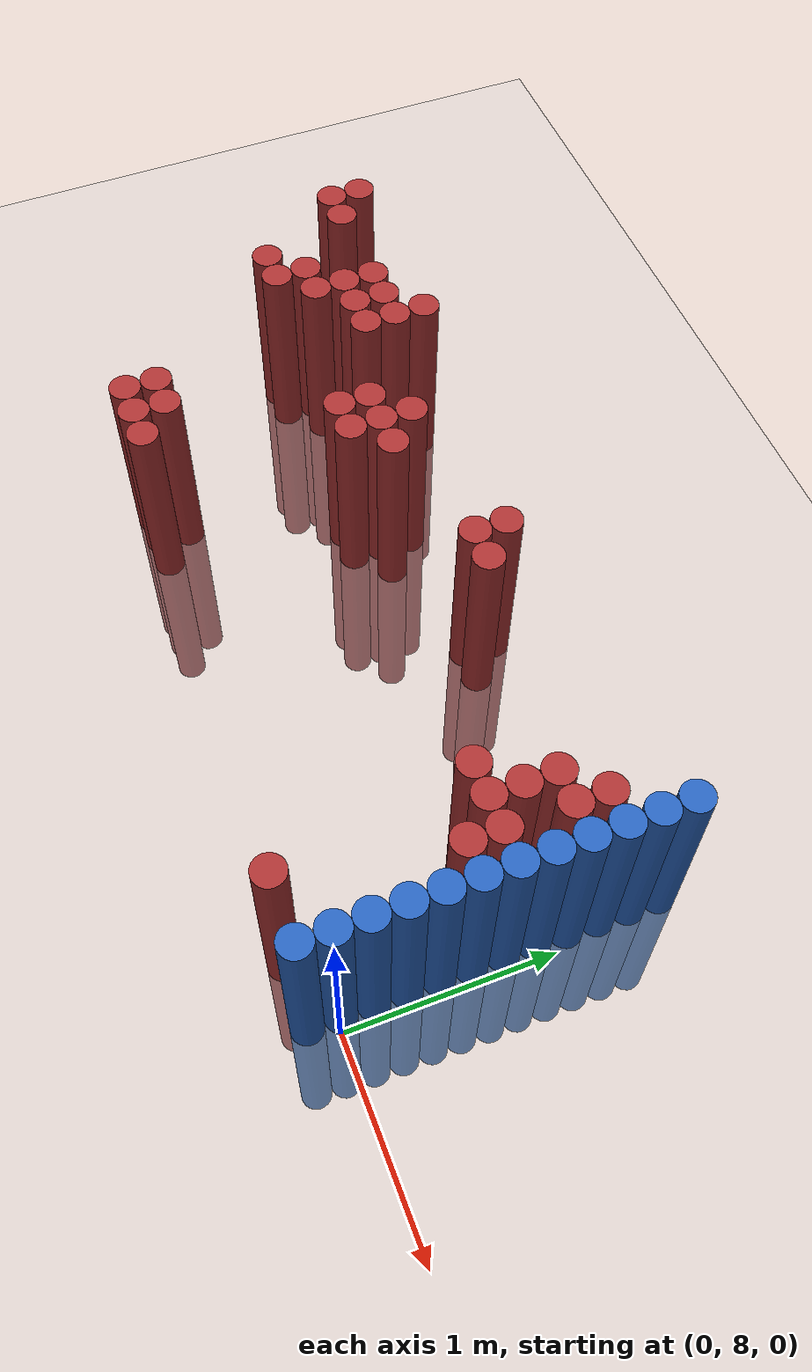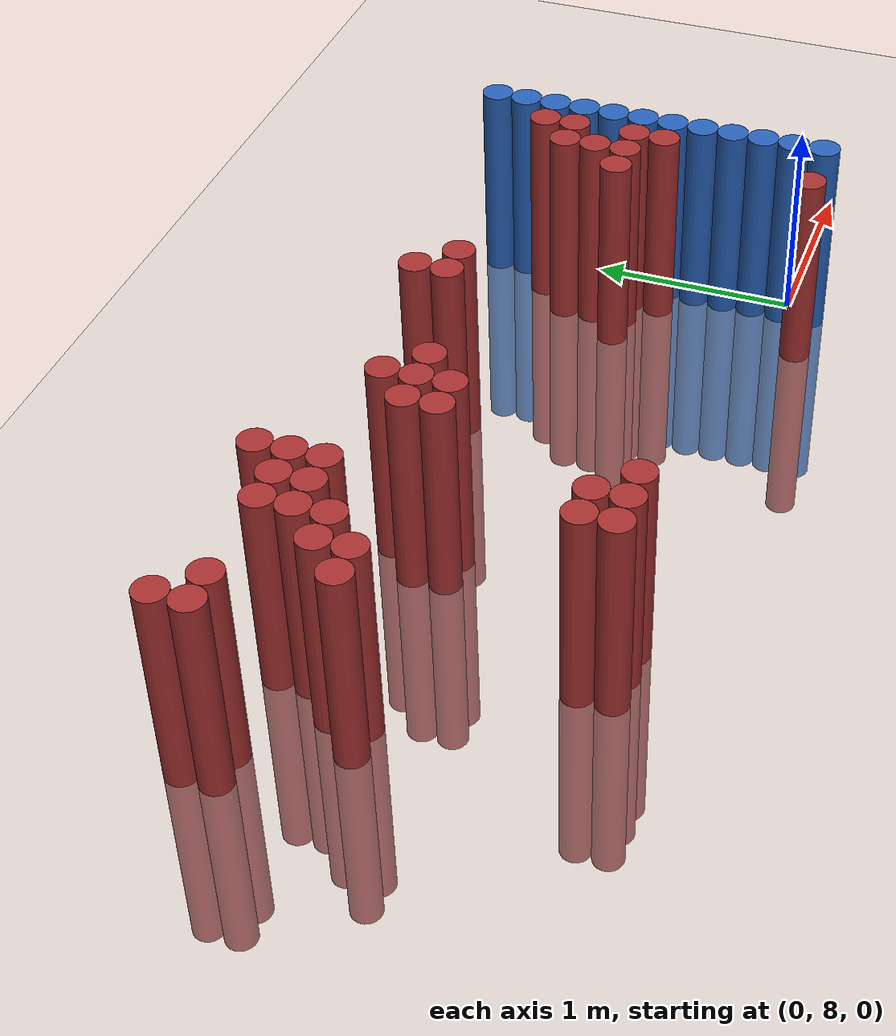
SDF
<sdf version="1.6">
 <world name="default">
  <model name="ground_plane">
   <static>1</static>
   <link name="link">
    <collision name="collision">
     <geometry><plane><normal>0 0 1</normal><size>100 100</size></plane></geometry>
     <surface><friction><ode><mu>100</mu><mu2>50</mu2></ode></friction></surface>
    </collision>
    <visual name="visual">
     <cast_shadows>0</cast_shadows>
     <geometry><plane><normal>0 0 1</normal><size>100 100</size></plane></geometry>
     <material>
      <script><uri>file://media/materials/scripts/gazebo.material</uri><name>Gazebo/Grey</name></script>
     </material>
    </visual>
   </link>
  </model>
  <model name="unit_cylinder_147">
   <static>1</static>
   <pose>-3.825000 9.375000 0.000000 0.000000 0.000000 0.000000</pose>
   <link name="link">
    <inertial>
     <mass>1</mass>
     <inertia><ixx>0.145833</ixx><ixy>0</ixy><ixz>0</ixz><iyy>0.145833</iyy><iyz>0</iyz><izz>0.125</izz></inertia>
    </inertial>
    <collision name="collision">
     <geometry><cylinder><radius>0.075000</radius><length>2</length></cylinder></geometry>
    </collision>
    <visual name="visual">
     <geometry><cylinder><radius>0.075000</radius><length>2</length></cylinder></geometry>
     <material>
      <ambient>0.648000 0.192000 0.192000 1</ambient>
      <diffuse>0.648000 0.192000 0.192000 1</diffuse>
     </material>
     <material>
      <script><name>Gazebo/Grey</name><uri>file://media/materials/scripts/gazebo.material</uri></script>
     </material>
    </visual>
   </link>
  </model>
  <model name="unit_cylinder_148">
   <static>1</static>
   <pose>-3.825000 9.525000 0.000000 0.000000 0.000000 0.000000</pose>
   <link name="link">
    <inertial>
     <mass>1</mass>
     <inertia><ixx>0.145833</ixx><ixy>0</ixy><ixz>0</ixz><iyy>0.145833</iyy><iyz>0</iyz><izz>0.125</izz></inertia>
    </inertial>
    <collision name="collision">
     <geometry><cylinder><radius>0.075000</radius><length>2</length></cylinder></geometry>
    </collision>
    <visual name="visual">
     <geometry><cylinder><radius>0.075000</radius><length>2</length></cylinder></geometry>
     <material>
      <ambient>0.648000 0.192000 0.192000 1</ambient>
      <diffuse>0.648000 0.192000 0.192000 1</diffuse>
     </material>
     <material>
      <script><name>Gazebo/Grey</name><uri>file://media/materials/scripts/gazebo.material</uri></script>
     </material>
    </visual>
   </link>
  </model>
  <model name="unit_cylinder_152">
   <static>1</static>
   <pose>-3.675000 9.375000 0.000000 0.000000 0.000000 0.000000</pose>
   <link name="link">
    <inertial>
     <mass>1</mass>
     <inertia><ixx>0.145833</ixx><ixy>0</ixy><ixz>0</ixz><iyy>0.145833</iyy><iyz>0</iyz><izz>0.125</izz></inertia>
    </inertial>
    <collision name="collision">
     <geometry><cylinder><radius>0.075000</radius><length>2</length></cylinder></geometry>
    </collision>
    <visual name="visual">
     <geometry><cylinder><radius>0.075000</radius><length>2</length></cylinder></geometry>
     <material>
      <ambient>0.648000 0.192000 0.192000 1</ambient>
      <diffuse>0.648000 0.192000 0.192000 1</diffuse>
     </material>
     <material>
      <script><name>Gazebo/Grey</name><uri>file://media/materials/scripts/gazebo.material</uri></script>
     </material>
    </visual>
   </link>
  </model>
  <model name="unit_cylinder_155">
   <static>1</static>
   <pose>-3.525000 8.925000 0.000000 0.000000 0.000000 0.000000</pose>
   <link name="link">
    <inertial>
     <mass>1</mass>
     <inertia><ixx>0.145833</ixx><ixy>0</ixy><ixz>0</ixz><iyy>0.145833</iyy><iyz>0</iyz><izz>0.125</izz></inertia>
    </inertial>
    <collision name="collision">
     <geometry><cylinder><radius>0.075000</radius><length>2</length></cylinder></geometry>
    </collision>
    <visual name="visual">
     <geometry><cylinder><radius>0.075000</radius><length>2</length></cylinder></geometry>
     <material>
      <ambient>0.648000 0.192000 0.192000 1</ambient>
      <diffuse>0.648000 0.192000 0.192000 1</diffuse>
     </material>
     <material>
      <script><name>Gazebo/Grey</name><uri>file://media/materials/scripts/gazebo.material</uri></script>
     </material>
    </visual>
   </link>
  </model>
  <model name="unit_cylinder_159">
   <static>1</static>
   <pose>-3.375000 8.925000 0.000000 0.000000 0.000000 0.000000</pose>
   <link name="link">
    <inertial>
     <mass>1</mass>
     <inertia><ixx>0.145833</ixx><ixy>0</ixy><ixz>0</ixz><iyy>0.145833</iyy><iyz>0</iyz><izz>0.125</izz></inertia>
    </inertial>
    <collision name="collision">
     <geometry><cylinder><radius>0.075000</radius><length>2</length></cylinder></geometry>
    </collision>
    <visual name="visual">
     <geometry><cylinder><radius>0.075000</radius><length>2</length></cylinder></geometry>
     <material>
      <ambient>0.648000 0.192000 0.192000 1</ambient>
      <diffuse>0.648000 0.192000 0.192000 1</diffuse>
     </material>
     <material>
      <script><name>Gazebo/Grey</name><uri>file://media/materials/scripts/gazebo.material</uri></script>
     </material>
    </visual>
   </link>
  </model>
  <model name="unit_cylinder_160">
   <static>1</static>
   <pose>-3.375000 9.075000 0.000000 0.000000 0.000000 0.000000</pose>
   <link name="link">
    <inertial>
     <mass>1</mass>
     <inertia><ixx>0.145833</ixx><ixy>0</ixy><ixz>0</ixz><iyy>0.145833</iyy><iyz>0</iyz><izz>0.125</izz></inertia>
    </inertial>
    <collision name="collision">
     <geometry><cylinder><radius>0.075000</radius><length>2</length></cylinder></geometry>
    </collision>
    <visual name="visual">
     <geometry><cylinder><radius>0.075000</radius><length>2</length></cylinder></geometry>
     <material>
      <ambient>0.648000 0.192000 0.192000 1</ambient>
      <diffuse>0.648000 0.192000 0.192000 1</diffuse>
     </material>
     <material>
      <script><name>Gazebo/Grey</name><uri>file://media/materials/scripts/gazebo.material</uri></script>
     </material>
    </visual>
   </link>
  </model>
  <model name="unit_cylinder_166">
   <static>1</static>
   <pose>-3.225000 9.075000 0.000000 0.000000 0.000000 0.000000</pose>
   <link name="link">
    <inertial>
     <mass>1</mass>
     <inertia><ixx>0.145833</ixx><ixy>0</ixy><ixz>0</ixz><iyy>0.145833</iyy><iyz>0</iyz><izz>0.125</izz></inertia>
    </inertial>
    <collision name="collision">
     <geometry><cylinder><radius>0.075000</radius><length>2</length></cylinder></geometry>
    </collision>
    <visual name="visual">
     <geometry><cylinder><radius>0.075000</radius><length>2</length></cylinder></geometry>
     <material>
      <ambient>0.648000 0.192000 0.192000 1</ambient>
      <diffuse>0.648000 0.192000 0.192000 1</diffuse>
     </material>
     <material>
      <script><name>Gazebo/Grey</name><uri>file://media/materials/scripts/gazebo.material</uri></script>
     </material>
    </visual>
   </link>
  </model>
  <model name="unit_cylinder_167">
   <static>1</static>
   <pose>-3.225000 9.225000 0.000000 0.000000 0.000000 0.000000</pose>
   <link name="link">
    <inertial>
     <mass>1</mass>
     <inertia><ixx>0.145833</ixx><ixy>0</ixy><ixz>0</ixz><iyy>0.145833</iyy><iyz>0</iyz><izz>0.125</izz></inertia>
    </inertial>
    <collision name="collision">
     <geometry><cylinder><radius>0.075000</radius><length>2</length></cylinder></geometry>
    </collision>
    <visual name="visual">
     <geometry><cylinder><radius>0.075000</radius><length>2</length></cylinder></geometry>
     <material>
      <ambient>0.648000 0.192000 0.192000 1</ambient>
      <diffuse>0.648000 0.192000 0.192000 1</diffuse>
     </material>
     <material>
      <script><name>Gazebo/Grey</name><uri>file://media/materials/scripts/gazebo.material</uri></script>
     </material>
    </visual>
   </link>
  </model>
  <model name="unit_cylinder_168">
   <static>1</static>
   <pose>-3.225000 9.375000 0.000000 0.000000 0.000000 0.000000</pose>
   <link name="link">
    <inertial>
     <mass>1</mass>
     <inertia><ixx>0.145833</ixx><ixy>0</ixy><ixz>0</ixz><iyy>0.145833</iyy><iyz>0</iyz><izz>0.125</izz></inertia>
    </inertial>
    <collision name="collision">
     <geometry><cylinder><radius>0.075000</radius><length>2</length></cylinder></geometry>
    </collision>
    <visual name="visual">
     <geometry><cylinder><radius>0.075000</radius><length>2</length></cylinder></geometry>
     <material>
      <ambient>0.648000 0.192000 0.192000 1</ambient>
      <diffuse>0.648000 0.192000 0.192000 1</diffuse>
     </material>
     <material>
      <script><name>Gazebo/Grey</name><uri>file://media/materials/scripts/gazebo.material</uri></script>
     </material>
    </visual>
   </link>
  </model>
  <model name="unit_cylinder_172">
   <static>1</static>
   <pose>-3.075000 9.225000 0.000000 0.000000 0.000000 0.000000</pose>
   <link name="link">
    <inertial>
     <mass>1</mass>
     <inertia><ixx>0.145833</ixx><ixy>0</ixy><ixz>0</ixz><iyy>0.145833</iyy><iyz>0</iyz><izz>0.125</izz></inertia>
    </inertial>
    <collision name="collision">
     <geometry><cylinder><radius>0.075000</radius><length>2</length></cylinder></geometry>
    </collision>
    <visual name="visual">
     <geometry><cylinder><radius>0.075000</radius><length>2</length></cylinder></geometry>
     <material>
      <ambient>0.648000 0.192000 0.192000 1</ambient>
      <diffuse>0.648000 0.192000 0.192000 1</diffuse>
     </material>
     <material>
      <script><name>Gazebo/Grey</name><uri>file://media/materials/scripts/gazebo.material</uri></script>
     </material>
    </visual>
   </link>
  </model>
  <model name="unit_cylinder_173">
   <static>1</static>
   <pose>-3.075000 9.375000 0.000000 0.000000 0.000000 0.000000</pose>
   <link name="link">
    <inertial>
     <mass>1</mass>
     <inertia><ixx>0.145833</ixx><ixy>0</ixy><ixz>0</ixz><iyy>0.145833</iyy><iyz>0</iyz><izz>0.125</izz></inertia>
    </inertial>
    <collision name="collision">
     <geometry><cylinder><radius>0.075000</radius><length>2</length></cylinder></geometry>
    </collision>
    <visual name="visual">
     <geometry><cylinder><radius>0.075000</radius><length>2</length></cylinder></geometry>
     <material>
      <ambient>0.648000 0.192000 0.192000 1</ambient>
      <diffuse>0.648000 0.192000 0.192000 1</diffuse>
     </material>
     <material>
      <script><name>Gazebo/Grey</name><uri>file://media/materials/scripts/gazebo.material</uri></script>
     </material>
    </visual>
   </link>
  </model>
  <model name="unit_cylinder_176">
   <static>1</static>
   <pose>-2.925000 8.025000 0.000000 0.000000 0.000000 0.000000</pose>
   <link name="link">
    <inertial>
     <mass>1</mass>
     <inertia><ixx>0.145833</ixx><ixy>0</ixy><ixz>0</ixz><iyy>0.145833</iyy><iyz>0</iyz><izz>0.125</izz></inertia>
    </inertial>
    <collision name="collision">
     <geometry><cylinder><radius>0.075000</radius><length>2</length></cylinder></geometry>
    </collision>
    <visual name="visual">
     <geometry><cylinder><radius>0.075000</radius><length>2</length></cylinder></geometry>
     <material>
      <ambient>0.648000 0.192000 0.192000 1</ambient>
      <diffuse>0.648000 0.192000 0.192000 1</diffuse>
     </material>
     <material>
      <script><name>Gazebo/Grey</name><uri>file://media/materials/scripts/gazebo.material</uri></script>
     </material>
    </visual>
   </link>
  </model>
  <model name="unit_cylinder_177">
   <static>1</static>
   <pose>-2.925000 8.175000 0.000000 0.000000 0.000000 0.000000</pose>
   <link name="link">
    <inertial>
     <mass>1</mass>
     <inertia><ixx>0.145833</ixx><ixy>0</ixy><ixz>0</ixz><iyy>0.145833</iyy><iyz>0</iyz><izz>0.125</izz></inertia>
    </inertial>
    <collision name="collision">
     <geometry><cylinder><radius>0.075000</radius><length>2</length></cylinder></geometry>
    </collision>
    <visual name="visual">
     <geometry><cylinder><radius>0.075000</radius><length>2</length></cylinder></geometry>
     <material>
      <ambient>0.648000 0.192000 0.192000 1</ambient>
      <diffuse>0.648000 0.192000 0.192000 1</diffuse>
     </material>
     <material>
      <script><name>Gazebo/Grey</name><uri>file://media/materials/scripts/gazebo.material</uri></script>
     </material>
    </visual>
   </link>
  </model>
  <model name="unit_cylinder_178">
   <static>1</static>
   <pose>-2.925000 9.225000 0.000000 0.000000 0.000000 0.000000</pose>
   <link name="link">
    <inertial>
     <mass>1</mass>
     <inertia><ixx>0.145833</ixx><ixy>0</ixy><ixz>0</ixz><iyy>0.145833</iyy><iyz>0</iyz><izz>0.125</izz></inertia>
    </inertial>
    <collision name="collision">
     <geometry><cylinder><radius>0.075000</radius><length>2</length></cylinder></geometry>
    </collision>
    <visual name="visual">
     <geometry><cylinder><radius>0.075000</radius><length>2</length></cylinder></geometry>
     <material>
      <ambient>0.648000 0.192000 0.192000 1</ambient>
      <diffuse>0.648000 0.192000 0.192000 1</diffuse>
     </material>
     <material>
      <script><name>Gazebo/Grey</name><uri>file://media/materials/scripts/gazebo.material</uri></script>
     </material>
    </visual>
   </link>
  </model>
  <model name="unit_cylinder_179">
   <static>1</static>
   <pose>-2.925000 9.375000 0.000000 0.000000 0.000000 0.000000</pose>
   <link name="link">
    <inertial>
     <mass>1</mass>
     <inertia><ixx>0.145833</ixx><ixy>0</ixy><ixz>0</ixz><iyy>0.145833</iyy><iyz>0</iyz><izz>0.125</izz></inertia>
    </inertial>
    <collision name="collision">
     <geometry><cylinder><radius>0.075000</radius><length>2</length></cylinder></geometry>
    </collision>
    <visual name="visual">
     <geometry><cylinder><radius>0.075000</radius><length>2</length></cylinder></geometry>
     <material>
      <ambient>0.648000 0.192000 0.192000 1</ambient>
      <diffuse>0.648000 0.192000 0.192000 1</diffuse>
     </material>
     <material>
      <script><name>Gazebo/Grey</name><uri>file://media/materials/scripts/gazebo.material</uri></script>
     </material>
    </visual>
   </link>
  </model>
  <model name="unit_cylinder_180">
   <static>1</static>
   <pose>-2.925000 9.525000 0.000000 0.000000 0.000000 0.000000</pose>
   <link name="link">
    <inertial>
     <mass>1</mass>
     <inertia><ixx>0.145833</ixx><ixy>0</ixy><ixz>0</ixz><iyy>0.145833</iyy><iyz>0</iyz><izz>0.125</izz></inertia>
    </inertial>
    <collision name="collision">
     <geometry><cylinder><radius>0.075000</radius><length>2</length></cylinder></geometry>
    </collision>
    <visual name="visual">
     <geometry><cylinder><radius>0.075000</radius><length>2</length></cylinder></geometry>
     <material>
      <ambient>0.648000 0.192000 0.192000 1</ambient>
      <diffuse>0.648000 0.192000 0.192000 1</diffuse>
     </material>
     <material>
      <script><name>Gazebo/Grey</name><uri>file://media/materials/scripts/gazebo.material</uri></script>
     </material>
    </visual>
   </link>
  </model>
  <model name="unit_cylinder_183">
   <static>1</static>
   <pose>-2.775000 8.025000 0.000000 0.000000 0.000000 0.000000</pose>
   <link name="link">
    <inertial>
     <mass>1</mass>
     <inertia><ixx>0.145833</ixx><ixy>0</ixy><ixz>0</ixz><iyy>0.145833</iyy><iyz>0</iyz><izz>0.125</izz></inertia>
    </inertial>
    <collision name="collision">
     <geometry><cylinder><radius>0.075000</radius><length>2</length></cylinder></geometry>
    </collision>
    <visual name="visual">
     <geometry><cylinder><radius>0.075000</radius><length>2</length></cylinder></geometry>
     <material>
      <ambient>0.648000 0.192000 0.192000 1</ambient>
      <diffuse>0.648000 0.192000 0.192000 1</diffuse>
     </material>
     <material>
      <script><name>Gazebo/Grey</name><uri>file://media/materials/scripts/gazebo.material</uri></script>
     </material>
    </visual>
   </link>
  </model>
  <model name="unit_cylinder_184">
   <static>1</static>
   <pose>-2.775000 8.175000 0.000000 0.000000 0.000000 0.000000</pose>
   <link name="link">
    <inertial>
     <mass>1</mass>
     <inertia><ixx>0.145833</ixx><ixy>0</ixy><ixz>0</ixz><iyy>0.145833</iyy><iyz>0</iyz><izz>0.125</izz></inertia>
    </inertial>
    <collision name="collision">
     <geometry><cylinder><radius>0.075000</radius><length>2</length></cylinder></geometry>
    </collision>
    <visual name="visual">
     <geometry><cylinder><radius>0.075000</radius><length>2</length></cylinder></geometry>
     <material>
      <ambient>0.648000 0.192000 0.192000 1</ambient>
      <diffuse>0.648000 0.192000 0.192000 1</diffuse>
     </material>
     <material>
      <script><name>Gazebo/Grey</name><uri>file://media/materials/scripts/gazebo.material</uri></script>
     </material>
    </visual>
   </link>
  </model>
  <model name="unit_cylinder_187">
   <static>1</static>
   <pose>-2.625000 8.025000 0.000000 0.000000 0.000000 0.000000</pose>
   <link name="link">
    <inertial>
     <mass>1</mass>
     <inertia><ixx>0.145833</ixx><ixy>0</ixy><ixz>0</ixz><iyy>0.145833</iyy><iyz>0</iyz><izz>0.125</izz></inertia>
    </inertial>
    <collision name="collision">
     <geometry><cylinder><radius>0.075000</radius><length>2</length></cylinder></geometry>
    </collision>
    <visual name="visual">
     <geometry><cylinder><radius>0.075000</radius><length>2</length></cylinder></geometry>
     <material>
      <ambient>0.648000 0.192000 0.192000 1</ambient>
      <diffuse>0.648000 0.192000 0.192000 1</diffuse>
     </material>
     <material>
      <script><name>Gazebo/Grey</name><uri>file://media/materials/scripts/gazebo.material</uri></script>
     </material>
    </visual>
   </link>
  </model>
  <model name="unit_cylinder_188">
   <static>1</static>
   <pose>-2.475000 8.925000 0.000000 0.000000 0.000000 0.000000</pose>
   <link name="link">
    <inertial>
     <mass>1</mass>
     <inertia><ixx>0.145833</ixx><ixy>0</ixy><ixz>0</ixz><iyy>0.145833</iyy><iyz>0</iyz><izz>0.125</izz></inertia>
    </inertial>
    <collision name="collision">
     <geometry><cylinder><radius>0.075000</radius><length>2</length></cylinder></geometry>
    </collision>
    <visual name="visual">
     <geometry><cylinder><radius>0.075000</radius><length>2</length></cylinder></geometry>
     <material>
      <ambient>0.648000 0.192000 0.192000 1</ambient>
      <diffuse>0.648000 0.192000 0.192000 1</diffuse>
     </material>
     <material>
      <script><name>Gazebo/Grey</name><uri>file://media/materials/scripts/gazebo.material</uri></script>
     </material>
    </visual>
   </link>
  </model>
  <model name="unit_cylinder_189">
   <static>1</static>
   <pose>-2.475000 9.075000 0.000000 0.000000 0.000000 0.000000</pose>
   <link name="link">
    <inertial>
     <mass>1</mass>
     <inertia><ixx>0.145833</ixx><ixy>0</ixy><ixz>0</ixz><iyy>0.145833</iyy><iyz>0</iyz><izz>0.125</izz></inertia>
    </inertial>
    <collision name="collision">
     <geometry><cylinder><radius>0.075000</radius><length>2</length></cylinder></geometry>
    </collision>
    <visual name="visual">
     <geometry><cylinder><radius>0.075000</radius><length>2</length></cylinder></geometry>
     <material>
      <ambient>0.648000 0.192000 0.192000 1</ambient>
      <diffuse>0.648000 0.192000 0.192000 1</diffuse>
     </material>
     <material>
      <script><name>Gazebo/Grey</name><uri>file://media/materials/scripts/gazebo.material</uri></script>
     </material>
    </visual>
   </link>
  </model>
  <model name="unit_cylinder_190">
   <static>1</static>
   <pose>-2.325000 8.925000 0.000000 0.000000 0.000000 0.000000</pose>
   <link name="link">
    <inertial>
     <mass>1</mass>
     <inertia><ixx>0.145833</ixx><ixy>0</ixy><ixz>0</ixz><iyy>0.145833</iyy><iyz>0</iyz><izz>0.125</izz></inertia>
    </inertial>
    <collision name="collision">
     <geometry><cylinder><radius>0.075000</radius><length>2</length></cylinder></geometry>
    </collision>
    <visual name="visual">
     <geometry><cylinder><radius>0.075000</radius><length>2</length></cylinder></geometry>
     <material>
      <ambient>0.648000 0.192000 0.192000 1</ambient>
      <diffuse>0.648000 0.192000 0.192000 1</diffuse>
     </material>
     <material>
      <script><name>Gazebo/Grey</name><uri>file://media/materials/scripts/gazebo.material</uri></script>
     </material>
    </visual>
   </link>
  </model>
  <model name="unit_cylinder_191">
   <static>1</static>
   <pose>-2.325000 9.075000 0.000000 0.000000 0.000000 0.000000</pose>
   <link name="link">
    <inertial>
     <mass>1</mass>
     <inertia><ixx>0.145833</ixx><ixy>0</ixy><ixz>0</ixz><iyy>0.145833</iyy><iyz>0</iyz><izz>0.125</izz></inertia>
    </inertial>
    <collision name="collision">
     <geometry><cylinder><radius>0.075000</radius><length>2</length></cylinder></geometry>
    </collision>
    <visual name="visual">
     <geometry><cylinder><radius>0.075000</radius><length>2</length></cylinder></geometry>
     <material>
      <ambient>0.648000 0.192000 0.192000 1</ambient>
      <diffuse>0.648000 0.192000 0.192000 1</diffuse>
     </material>
     <material>
      <script><name>Gazebo/Grey</name><uri>file://media/materials/scripts/gazebo.material</uri></script>
     </material>
    </visual>
   </link>
  </model>
  <model name="unit_cylinder_192">
   <static>1</static>
   <pose>-2.325000 9.225000 0.000000 0.000000 0.000000 0.000000</pose>
   <link name="link">
    <inertial>
     <mass>1</mass>
     <inertia><ixx>0.145833</ixx><ixy>0</ixy><ixz>0</ixz><iyy>0.145833</iyy><iyz>0</iyz><izz>0.125</izz></inertia>
    </inertial>
    <collision name="collision">
     <geometry><cylinder><radius>0.075000</radius><length>2</length></cylinder></geometry>
    </collision>
    <visual name="visual">
     <geometry><cylinder><radius>0.075000</radius><length>2</length></cylinder></geometry>
     <material>
      <ambient>0.648000 0.192000 0.192000 1</ambient>
      <diffuse>0.648000 0.192000 0.192000 1</diffuse>
     </material>
     <material>
      <script><name>Gazebo/Grey</name><uri>file://media/materials/scripts/gazebo.material</uri></script>
     </material>
    </visual>
   </link>
  </model>
  <model name="unit_cylinder_193">
   <static>1</static>
   <pose>-2.175000 9.075000 0.000000 0.000000 0.000000 0.000000</pose>
   <link name="link">
    <inertial>
     <mass>1</mass>
     <inertia><ixx>0.145833</ixx><ixy>0</ixy><ixz>0</ixz><iyy>0.145833</iyy><iyz>0</iyz><izz>0.125</izz></inertia>
    </inertial>
    <collision name="collision">
     <geometry><cylinder><radius>0.075000</radius><length>2</length></cylinder></geometry>
    </collision>
    <visual name="visual">
     <geometry><cylinder><radius>0.075000</radius><length>2</length></cylinder></geometry>
     <material>
      <ambient>0.648000 0.192000 0.192000 1</ambient>
      <diffuse>0.648000 0.192000 0.192000 1</diffuse>
     </material>
     <material>
      <script><name>Gazebo/Grey</name><uri>file://media/materials/scripts/gazebo.material</uri></script>
     </material>
    </visual>
   </link>
  </model>
  <model name="unit_cylinder_194">
   <static>1</static>
   <pose>-1.575000 9.225000 0.000000 0.000000 0.000000 0.000000</pose>
   <link name="link">
    <inertial>
     <mass>1</mass>
     <inertia><ixx>0.145833</ixx><ixy>0</ixy><ixz>0</ixz><iyy>0.145833</iyy><iyz>0</iyz><izz>0.125</izz></inertia>
    </inertial>
    <collision name="collision">
     <geometry><cylinder><radius>0.075000</radius><length>2</length></cylinder></geometry>
    </collision>
    <visual name="visual">
     <geometry><cylinder><radius>0.075000</radius><length>2</length></cylinder></geometry>
     <material>
      <ambient>0.648000 0.192000 0.192000 1</ambient>
      <diffuse>0.648000 0.192000 0.192000 1</diffuse>
     </material>
     <material>
      <script><name>Gazebo/Grey</name><uri>file://media/materials/scripts/gazebo.material</uri></script>
     </material>
    </visual>
   </link>
  </model>
  <model name="unit_cylinder_195">
   <static>1</static>
   <pose>-1.575000 9.375000 0.000000 0.000000 0.000000 0.000000</pose>
   <link name="link">
    <inertial>
     <mass>1</mass>
     <inertia><ixx>0.145833</ixx><ixy>0</ixy><ixz>0</ixz><iyy>0.145833</iyy><iyz>0</iyz><izz>0.125</izz></inertia>
    </inertial>
    <collision name="collision">
     <geometry><cylinder><radius>0.075000</radius><length>2</length></cylinder></geometry>
    </collision>
    <visual name="visual">
     <geometry><cylinder><radius>0.075000</radius><length>2</length></cylinder></geometry>
     <material>
      <ambient>0.648000 0.192000 0.192000 1</ambient>
      <diffuse>0.648000 0.192000 0.192000 1</diffuse>
     </material>
     <material>
      <script><name>Gazebo/Grey</name><uri>file://media/materials/scripts/gazebo.material</uri></script>
     </material>
    </visual>
   </link>
  </model>
  <model name="unit_cylinder_196">
   <static>1</static>
   <pose>-1.425000 9.225000 0.000000 0.000000 0.000000 0.000000</pose>
   <link name="link">
    <inertial>
     <mass>1</mass>
     <inertia><ixx>0.145833</ixx><ixy>0</ixy><ixz>0</ixz><iyy>0.145833</iyy><iyz>0</iyz><izz>0.125</izz></inertia>
    </inertial>
    <collision name="collision">
     <geometry><cylinder><radius>0.075000</radius><length>2</length></cylinder></geometry>
    </collision>
    <visual name="visual">
     <geometry><cylinder><radius>0.075000</radius><length>2</length></cylinder></geometry>
     <material>
      <ambient>0.648000 0.192000 0.192000 1</ambient>
      <diffuse>0.648000 0.192000 0.192000 1</diffuse>
     </material>
     <material>
      <script><name>Gazebo/Grey</name><uri>file://media/materials/scripts/gazebo.material</uri></script>
     </material>
    </visual>
   </link>
  </model>
  <model name="unit_cylinder_199">
   <static>1</static>
   <pose>-0.525000 8.775000 0.000000 0.000000 0.000000 0.000000</pose>
   <link name="link">
    <inertial>
     <mass>1</mass>
     <inertia><ixx>0.145833</ixx><ixy>0</ixy><ixz>0</ixz><iyy>0.145833</iyy><iyz>0</iyz><izz>0.125</izz></inertia>
    </inertial>
    <collision name="collision">
     <geometry><cylinder><radius>0.075000</radius><length>2</length></cylinder></geometry>
    </collision>
    <visual name="visual">
     <geometry><cylinder><radius>0.075000</radius><length>2</length></cylinder></geometry>
     <material>
      <ambient>0.648000 0.192000 0.192000 1</ambient>
      <diffuse>0.648000 0.192000 0.192000 1</diffuse>
     </material>
     <material>
      <script><name>Gazebo/Grey</name><uri>file://media/materials/scripts/gazebo.material</uri></script>
     </material>
    </visual>
   </link>
  </model>
  <model name="unit_cylinder_202">
   <static>1</static>
   <pose>-0.375000 7.875000 0.000000 0.000000 0.000000 0.000000</pose>
   <link name="link">
    <inertial>
     <mass>1</mass>
     <inertia><ixx>0.145833</ixx><ixy>0</ixy><ixz>0</ixz><iyy>0.145833</iyy><iyz>0</iyz><izz>0.125</izz></inertia>
    </inertial>
    <collision name="collision">
     <geometry><cylinder><radius>0.075000</radius><length>2</length></cylinder></geometry>
    </collision>
    <visual name="visual">
     <geometry><cylinder><radius>0.075000</radius><length>2</length></cylinder></geometry>
     <material>
      <ambient>0.648000 0.192000 0.192000 1</ambient>
      <diffuse>0.648000 0.192000 0.192000 1</diffuse>
     </material>
     <material>
      <script><name>Gazebo/Grey</name><uri>file://media/materials/scripts/gazebo.material</uri></script>
     </material>
    </visual>
   </link>
  </model>
  <model name="unit_cylinder_203">
   <static>1</static>
   <pose>-0.375000 8.775000 0.000000 0.000000 0.000000 0.000000</pose>
   <link name="link">
    <inertial>
     <mass>1</mass>
     <inertia><ixx>0.145833</ixx><ixy>0</ixy><ixz>0</ixz><iyy>0.145833</iyy><iyz>0</iyz><izz>0.125</izz></inertia>
    </inertial>
    <collision name="collision">
     <geometry><cylinder><radius>0.075000</radius><length>2</length></cylinder></geometry>
    </collision>
    <visual name="visual">
     <geometry><cylinder><radius>0.075000</radius><length>2</length></cylinder></geometry>
     <material>
      <ambient>0.648000 0.192000 0.192000 1</ambient>
      <diffuse>0.648000 0.192000 0.192000 1</diffuse>
     </material>
     <material>
      <script><name>Gazebo/Grey</name><uri>file://media/materials/scripts/gazebo.material</uri></script>
     </material>
    </visual>
   </link>
  </model>
  <model name="unit_cylinder_204">
   <static>1</static>
   <pose>-0.375000 8.925000 0.000000 0.000000 0.000000 0.000000</pose>
   <link name="link">
    <inertial>
     <mass>1</mass>
     <inertia><ixx>0.145833</ixx><ixy>0</ixy><ixz>0</ixz><iyy>0.145833</iyy><iyz>0</iyz><izz>0.125</izz></inertia>
    </inertial>
    <collision name="collision">
     <geometry><cylinder><radius>0.075000</radius><length>2</length></cylinder></geometry>
    </collision>
    <visual name="visual">
     <geometry><cylinder><radius>0.075000</radius><length>2</length></cylinder></geometry>
     <material>
      <ambient>0.648000 0.192000 0.192000 1</ambient>
      <diffuse>0.648000 0.192000 0.192000 1</diffuse>
     </material>
     <material>
      <script><name>Gazebo/Grey</name><uri>file://media/materials/scripts/gazebo.material</uri></script>
     </material>
    </visual>
   </link>
  </model>
  <model name="unit_cylinder_205">
   <static>1</static>
   <pose>-0.375000 9.075000 0.000000 0.000000 0.000000 0.000000</pose>
   <link name="link">
    <inertial>
     <mass>1</mass>
     <inertia><ixx>0.145833</ixx><ixy>0</ixy><ixz>0</ixz><iyy>0.145833</iyy><iyz>0</iyz><izz>0.125</izz></inertia>
    </inertial>
    <collision name="collision">
     <geometry><cylinder><radius>0.075000</radius><length>2</length></cylinder></geometry>
    </collision>
    <visual name="visual">
     <geometry><cylinder><radius>0.075000</radius><length>2</length></cylinder></geometry>
     <material>
      <ambient>0.648000 0.192000 0.192000 1</ambient>
      <diffuse>0.648000 0.192000 0.192000 1</diffuse>
     </material>
     <material>
      <script><name>Gazebo/Grey</name><uri>file://media/materials/scripts/gazebo.material</uri></script>
     </material>
    </visual>
   </link>
  </model>
  <model name="unit_cylinder_212">
   <static>1</static>
   <pose>-0.225000 8.625000 0.000000 0.000000 0.000000 0.000000</pose>
   <link name="link">
    <inertial>
     <mass>1</mass>
     <inertia><ixx>0.145833</ixx><ixy>0</ixy><ixz>0</ixz><iyy>0.145833</iyy><iyz>0</iyz><izz>0.125</izz></inertia>
    </inertial>
    <collision name="collision">
     <geometry><cylinder><radius>0.075000</radius><length>2</length></cylinder></geometry>
    </collision>
    <visual name="visual">
     <geometry><cylinder><radius>0.075000</radius><length>2</length></cylinder></geometry>
     <material>
      <ambient>0.648000 0.192000 0.192000 1</ambient>
      <diffuse>0.648000 0.192000 0.192000 1</diffuse>
     </material>
     <material>
      <script><name>Gazebo/Grey</name><uri>file://media/materials/scripts/gazebo.material</uri></script>
     </material>
    </visual>
   </link>
  </model>
  <model name="unit_cylinder_213">
   <static>1</static>
   <pose>-0.225000 8.775000 0.000000 0.000000 0.000000 0.000000</pose>
   <link name="link">
    <inertial>
     <mass>1</mass>
     <inertia><ixx>0.145833</ixx><ixy>0</ixy><ixz>0</ixz><iyy>0.145833</iyy><iyz>0</iyz><izz>0.125</izz></inertia>
    </inertial>
    <collision name="collision">
     <geometry><cylinder><radius>0.075000</radius><length>2</length></cylinder></geometry>
    </collision>
    <visual name="visual">
     <geometry><cylinder><radius>0.075000</radius><length>2</length></cylinder></geometry>
     <material>
      <ambient>0.648000 0.192000 0.192000 1</ambient>
      <diffuse>0.648000 0.192000 0.192000 1</diffuse>
     </material>
     <material>
      <script><name>Gazebo/Grey</name><uri>file://media/materials/scripts/gazebo.material</uri></script>
     </material>
    </visual>
   </link>
  </model>
  <model name="unit_cylinder_214">
   <static>1</static>
   <pose>-0.225000 9.075000 0.000000 0.000000 0.000000 0.000000</pose>
   <link name="link">
    <inertial>
     <mass>1</mass>
     <inertia><ixx>0.145833</ixx><ixy>0</ixy><ixz>0</ixz><iyy>0.145833</iyy><iyz>0</iyz><izz>0.125</izz></inertia>
    </inertial>
    <collision name="collision">
     <geometry><cylinder><radius>0.075000</radius><length>2</length></cylinder></geometry>
    </collision>
    <visual name="visual">
     <geometry><cylinder><radius>0.075000</radius><length>2</length></cylinder></geometry>
     <material>
      <ambient>0.648000 0.192000 0.192000 1</ambient>
      <diffuse>0.648000 0.192000 0.192000 1</diffuse>
     </material>
     <material>
      <script><name>Gazebo/Grey</name><uri>file://media/materials/scripts/gazebo.material</uri></script>
     </material>
    </visual>
   </link>
  </model>
  <model name="unit_cylinder_215">
   <static>1</static>
   <pose>-0.225000 9.225000 0.000000 0.000000 0.000000 0.000000</pose>
   <link name="link">
    <inertial>
     <mass>1</mass>
     <inertia><ixx>0.145833</ixx><ixy>0</ixy><ixz>0</ixz><iyy>0.145833</iyy><iyz>0</iyz><izz>0.125</izz></inertia>
    </inertial>
    <collision name="collision">
     <geometry><cylinder><radius>0.075000</radius><length>2</length></cylinder></geometry>
    </collision>
    <visual name="visual">
     <geometry><cylinder><radius>0.075000</radius><length>2</length></cylinder></geometry>
     <material>
      <ambient>0.648000 0.192000 0.192000 1</ambient>
      <diffuse>0.648000 0.192000 0.192000 1</diffuse>
     </material>
     <material>
      <script><name>Gazebo/Grey</name><uri>file://media/materials/scripts/gazebo.material</uri></script>
     </material>
    </visual>
   </link>
  </model>
  <model name="unit_cylinder_234">
   <static>1</static>
   <pose>-0.075000 7.875000 0.000000 0.000000 0.000000 0.000000</pose>
   <link name="link">
    <inertial>
     <mass>1</mass>
     <inertia><ixx>0.145833</ixx><ixy>0</ixy><ixz>0</ixz><iyy>0.145833</iyy><iyz>0</iyz><izz>0.125</izz></inertia>
    </inertial>
    <collision name="collision">
     <geometry><cylinder><radius>0.075000</radius><length>2</length></cylinder></geometry>
    </collision>
    <visual name="visual">
     <geometry><cylinder><radius>0.075000</radius><length>2</length></cylinder></geometry>
     <material>
      <ambient>0.152000 0.379000 0.720000 1</ambient>
      <diffuse>0.152000 0.379000 0.720000 1</diffuse>
     </material>
     <material>
      <script><name>Gazebo/Grey</name><uri>file://media/materials/scripts/gazebo.material</uri></script>
     </material>
    </visual>
   </link>
  </model>
  <model name="unit_cylinder_235">
   <static>1</static>
   <pose>-0.075000 8.025000 0.000000 0.000000 0.000000 0.000000</pose>
   <link name="link">
    <inertial>
     <mass>1</mass>
     <inertia><ixx>0.145833</ixx><ixy>0</ixy><ixz>0</ixz><iyy>0.145833</iyy><iyz>0</iyz><izz>0.125</izz></inertia>
    </inertial>
    <collision name="collision">
     <geometry><cylinder><radius>0.075000</radius><length>2</length></cylinder></geometry>
    </collision>
    <visual name="visual">
     <geometry><cylinder><radius>0.075000</radius><length>2</length></cylinder></geometry>
     <material>
      <ambient>0.152000 0.379000 0.720000 1</ambient>
      <diffuse>0.152000 0.379000 0.720000 1</diffuse>
     </material>
     <material>
      <script><name>Gazebo/Grey</name><uri>file://media/materials/scripts/gazebo.material</uri></script>
     </material>
    </visual>
   </link>
  </model>
  <model name="unit_cylinder_236">
   <static>1</static>
   <pose>-0.075000 8.175000 0.000000 0.000000 0.000000 0.000000</pose>
   <link name="link">
    <inertial>
     <mass>1</mass>
     <inertia><ixx>0.145833</ixx><ixy>0</ixy><ixz>0</ixz><iyy>0.145833</iyy><iyz>0</iyz><izz>0.125</izz></inertia>
    </inertial>
    <collision name="collision">
     <geometry><cylinder><radius>0.075000</radius><length>2</length></cylinder></geometry>
    </collision>
    <visual name="visual">
     <geometry><cylinder><radius>0.075000</radius><length>2</length></cylinder></geometry>
     <material>
      <ambient>0.152000 0.379000 0.720000 1</ambient>
      <diffuse>0.152000 0.379000 0.720000 1</diffuse>
     </material>
     <material>
      <script><name>Gazebo/Grey</name><uri>file://media/materials/scripts/gazebo.material</uri></script>
     </material>
    </visual>
   </link>
  </model>
  <model name="unit_cylinder_237">
   <static>1</static>
   <pose>-0.075000 8.325000 0.000000 0.000000 0.000000 0.000000</pose>
   <link name="link">
    <inertial>
     <mass>1</mass>
     <inertia><ixx>0.145833</ixx><ixy>0</ixy><ixz>0</ixz><iyy>0.145833</iyy><iyz>0</iyz><izz>0.125</izz></inertia>
    </inertial>
    <collision name="collision">
     <geometry><cylinder><radius>0.075000</radius><length>2</length></cylinder></geometry>
    </collision>
    <visual name="visual">
     <geometry><cylinder><radius>0.075000</radius><length>2</length></cylinder></geometry>
     <material>
      <ambient>0.152000 0.379000 0.720000 1</ambient>
      <diffuse>0.152000 0.379000 0.720000 1</diffuse>
     </material>
     <material>
      <script><name>Gazebo/Grey</name><uri>file://media/materials/scripts/gazebo.material</uri></script>
     </material>
    </visual>
   </link>
  </model>
  <model name="unit_cylinder_238">
   <static>1</static>
   <pose>-0.075000 8.475000 0.000000 0.000000 0.000000 0.000000</pose>
   <link name="link">
    <inertial>
     <mass>1</mass>
     <inertia><ixx>0.145833</ixx><ixy>0</ixy><ixz>0</ixz><iyy>0.145833</iyy><iyz>0</iyz><izz>0.125</izz></inertia>
    </inertial>
    <collision name="collision">
     <geometry><cylinder><radius>0.075000</radius><length>2</length></cylinder></geometry>
    </collision>
    <visual name="visual">
     <geometry><cylinder><radius>0.075000</radius><length>2</length></cylinder></geometry>
     <material>
      <ambient>0.152000 0.379000 0.720000 1</ambient>
      <diffuse>0.152000 0.379000 0.720000 1</diffuse>
     </material>
     <material>
      <script><name>Gazebo/Grey</name><uri>file://media/materials/scripts/gazebo.material</uri></script>
     </material>
    </visual>
   </link>
  </model>
  <model name="unit_cylinder_239">
   <static>1</static>
   <pose>-0.075000 8.625000 0.000000 0.000000 0.000000 0.000000</pose>
   <link name="link">
    <inertial>
     <mass>1</mass>
     <inertia><ixx>0.145833</ixx><ixy>0</ixy><ixz>0</ixz><iyy>0.145833</iyy><iyz>0</iyz><izz>0.125</izz></inertia>
    </inertial>
    <collision name="collision">
     <geometry><cylinder><radius>0.075000</radius><length>2</length></cylinder></geometry>
    </collision>
    <visual name="visual">
     <geometry><cylinder><radius>0.075000</radius><length>2</length></cylinder></geometry>
     <material>
      <ambient>0.152000 0.379000 0.720000 1</ambient>
      <diffuse>0.152000 0.379000 0.720000 1</diffuse>
     </material>
     <material>
      <script><name>Gazebo/Grey</name><uri>file://media/materials/scripts/gazebo.material</uri></script>
     </material>
    </visual>
   </link>
  </model>
  <model name="unit_cylinder_240">
   <static>1</static>
   <pose>-0.075000 8.775000 0.000000 0.000000 0.000000 0.000000</pose>
   <link name="link">
    <inertial>
     <mass>1</mass>
     <inertia><ixx>0.145833</ixx><ixy>0</ixy><ixz>0</ixz><iyy>0.145833</iyy><iyz>0</iyz><izz>0.125</izz></inertia>
    </inertial>
    <collision name="collision">
     <geometry><cylinder><radius>0.075000</radius><length>2</length></cylinder></geometry>
    </collision>
    <visual name="visual">
     <geometry><cylinder><radius>0.075000</radius><length>2</length></cylinder></geometry>
     <material>
      <ambient>0.152000 0.379000 0.720000 1</ambient>
      <diffuse>0.152000 0.379000 0.720000 1</diffuse>
     </material>
     <material>
      <script><name>Gazebo/Grey</name><uri>file://media/materials/scripts/gazebo.material</uri></script>
     </material>
    </visual>
   </link>
  </model>
  <model name="unit_cylinder_241">
   <static>1</static>
   <pose>-0.075000 8.925000 0.000000 0.000000 0.000000 0.000000</pose>
   <link name="link">
    <inertial>
     <mass>1</mass>
     <inertia><ixx>0.145833</ixx><ixy>0</ixy><ixz>0</ixz><iyy>0.145833</iyy><iyz>0</iyz><izz>0.125</izz></inertia>
    </inertial>
    <collision name="collision">
     <geometry><cylinder><radius>0.075000</radius><length>2</length></cylinder></geometry>
    </collision>
    <visual name="visual">
     <geometry><cylinder><radius>0.075000</radius><length>2</length></cylinder></geometry>
     <material>
      <ambient>0.152000 0.379000 0.720000 1</ambient>
      <diffuse>0.152000 0.379000 0.720000 1</diffuse>
     </material>
     <material>
      <script><name>Gazebo/Grey</name><uri>file://media/materials/scripts/gazebo.material</uri></script>
     </material>
    </visual>
   </link>
  </model>
  <model name="unit_cylinder_242">
   <static>1</static>
   <pose>-0.075000 9.075000 0.000000 0.000000 0.000000 0.000000</pose>
   <link name="link">
    <inertial>
     <mass>1</mass>
     <inertia><ixx>0.145833</ixx><ixy>0</ixy><ixz>0</ixz><iyy>0.145833</iyy><iyz>0</iyz><izz>0.125</izz></inertia>
    </inertial>
    <collision name="collision">
     <geometry><cylinder><radius>0.075000</radius><length>2</length></cylinder></geometry>
    </collision>
    <visual name="visual">
     <geometry><cylinder><radius>0.075000</radius><length>2</length></cylinder></geometry>
     <material>
      <ambient>0.152000 0.379000 0.720000 1</ambient>
      <diffuse>0.152000 0.379000 0.720000 1</diffuse>
     </material>
     <material>
      <script><name>Gazebo/Grey</name><uri>file://media/materials/scripts/gazebo.material</uri></script>
     </material>
    </visual>
   </link>
  </model>
  <model name="unit_cylinder_243">
   <static>1</static>
   <pose>-0.075000 9.225000 0.000000 0.000000 0.000000 0.000000</pose>
   <link name="link">
    <inertial>
     <mass>1</mass>
     <inertia><ixx>0.145833</ixx><ixy>0</ixy><ixz>0</ixz><iyy>0.145833</iyy><iyz>0</iyz><izz>0.125</izz></inertia>
    </inertial>
    <collision name="collision">
     <geometry><cylinder><radius>0.075000</radius><length>2</length></cylinder></geometry>
    </collision>
    <visual name="visual">
     <geometry><cylinder><radius>0.075000</radius><length>2</length></cylinder></geometry>
     <material>
      <ambient>0.152000 0.379000 0.720000 1</ambient>
      <diffuse>0.152000 0.379000 0.720000 1</diffuse>
     </material>
     <material>
      <script><name>Gazebo/Grey</name><uri>file://media/materials/scripts/gazebo.material</uri></script>
     </material>
    </visual>
   </link>
  </model>
  <model name="unit_cylinder_244">
   <static>1</static>
   <pose>-0.075000 9.375000 0.000000 0.000000 0.000000 0.000000</pose>
   <link name="link">
    <inertial>
     <mass>1</mass>
     <inertia><ixx>0.145833</ixx><ixy>0</ixy><ixz>0</ixz><iyy>0.145833</iyy><iyz>0</iyz><izz>0.125</izz></inertia>
    </inertial>
    <collision name="collision">
     <geometry><cylinder><radius>0.075000</radius><length>2</length></cylinder></geometry>
    </collision>
    <visual name="visual">
     <geometry><cylinder><radius>0.075000</radius><length>2</length></cylinder></geometry>
     <material>
      <ambient>0.152000 0.379000 0.720000 1</ambient>
      <diffuse>0.152000 0.379000 0.720000 1</diffuse>
     </material>
     <material>
      <script><name>Gazebo/Grey</name><uri>file://media/materials/scripts/gazebo.material</uri></script>
     </material>
    </visual>
   </link>
  </model>
  <model name="unit_cylinder_245">
   <static>1</static>
   <pose>-0.075000 9.525000 0.000000 0.000000 0.000000 0.000000</pose>
   <link name="link">
    <inertial>
     <mass>1</mass>
     <inertia><ixx>0.145833</ixx><ixy>0</ixy><ixz>0</ixz><iyy>0.145833</iyy><iyz>0</iyz><izz>0.125</izz></inertia>
    </inertial>
    <collision name="collision">
     <geometry><cylinder><radius>0.075000</radius><length>2</length></cylinder></geometry>
    </collision>
    <visual name="visual">
     <geometry><cylinder><radius>0.075000</radius><length>2</length></cylinder></geometry>
     <material>
      <ambient>0.152000 0.379000 0.720000 1</ambient>
      <diffuse>0.152000 0.379000 0.720000 1</diffuse>
     </material>
     <material>
      <script><name>Gazebo/Grey</name><uri>file://media/materials/scripts/gazebo.material</uri></script>
     </material>
    </visual>
   </link>
  </model>
 </world>
</sdf>
